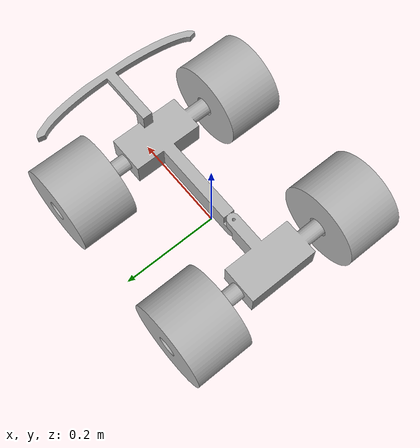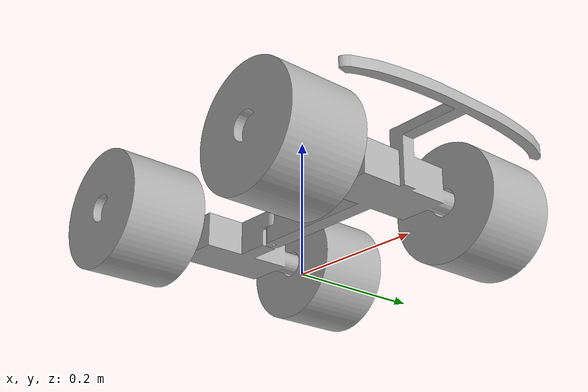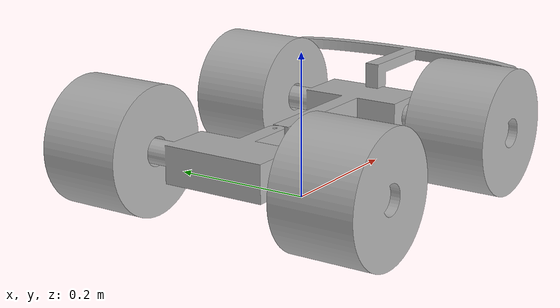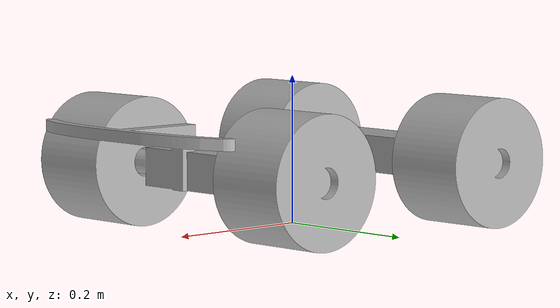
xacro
<?xml version="1.0" ?>
<robot name="farmbot" xmlns:xacro="http://www.ros.org/wiki/xacro">

<xacro:include filename="$(find farmbot_description)/urdf/materials.xacro" />
<xacro:include filename="$(find farmbot_description)/urdf/farmbot.gazebo" />
<link name="base_link">
  <inertial>
    <origin xyz="0.14705284891472079 0.005827858553437189 3.5052699745628e-07" rpy="0 0 0"/>
    <mass value="8.113454311504578"/>
    <inertia ixx="0.03198" iyy="0.07641" izz="0.051754" ixy="-0.006565" iyz="-0.0" ixz="-1e-06"/>
  </inertial>
  <visual>
    <origin xyz="0 0 0.087" rpy="${pi/2} 0 0"/>
    <geometry>
      <mesh filename="file://$(find farmbot_description)/meshes/base_link.stl" scale="0.001 0.001 0.001"/>
    </geometry>
    <material name="silver"/>
  </visual>
  <collision>
    <origin xyz="0 0 0.087" rpy="${pi/2} 0 0"/>
    <geometry>
      <mesh filename="file://$(find farmbot_description)/meshes/base_link.stl" scale="0.001 0.001 0.001"/>
    </geometry>
  </collision>
</link>

<link name="component__1__1">
  <inertial>
    <origin xyz="-0.09236420727033787 0.00021362177608096554 -4.877897432420397e-07" rpy="0 0 0"/>
    <mass value="5.8958658025807615"/>
    <inertia ixx="0.022471" iyy="0.026114" izz="0.005817" ixy="-0.000116" iyz="-0.0" ixz="-0.0"/>
  </inertial>
  <visual>
    <origin xyz="0.0625 0.0 0.0" rpy="${pi/2} 0 0"/>
    <geometry>
      <mesh filename="file://$(find farmbot_description)/meshes/component__1__1.stl" scale="0.001 0.001 0.001"/>
    </geometry>
    <material name="silver"/>
  </visual>
  <collision>
    <origin xyz="0.0625 0.0 0.087" rpy="${pi/2} 0 0"/>
    <geometry>
      <mesh filename="file://$(find farmbot_description)/meshes/component__1__1.stl" scale="0.001 0.001 0.001"/>
    </geometry>
  </collision>
</link>

<link name="component__2__1">
  <inertial>
    <origin xyz="-3.7769361846407e-07 -3.5857001496231076e-07 -0.0059616689033889225" rpy="0 0 0"/>
    <mass value="20.82503572060766"/>
    <inertia ixx="0.063249" iyy="0.063249" izz="0.081111" ixy="-0.0" iyz="0.0" ixz="0.0"/>
  </inertial>
  <visual>
    <origin xyz="-0.161565 -0.166785 0.0" rpy="${pi/2} 0 0"/>
    <geometry>
      <mesh filename="file://$(find farmbot_description)/meshes/component__2__1.stl" scale="0.001 0.001 0.001"/>
    </geometry>
    <material name="silver"/>
  </visual>
  <collision>
    <origin xyz="-0.161565 -0.166785 0.0" rpy="${pi/2} 0 0"/>
    <geometry>
      <mesh filename="file://$(find farmbot_description)/meshes/component__2__1.stl" scale="0.001 0.001 0.001"/>
    </geometry>
  </collision>
</link>

<link name="component__2__2">
  <inertial>
    <origin xyz="-3.7769361846407e-07 -3.5857001489125644e-07 0.005961691828770682" rpy="0 0 0"/>
    <mass value="20.82503572060766"/>
    <inertia ixx="0.063249" iyy="0.063249" izz="0.081111" ixy="0.0" iyz="0.0" ixz="-0.0"/>
  </inertial>
  <visual>
    <origin xyz="-0.161565 0.166784 0.0" rpy="${pi/2} 0 0"/>
    <geometry>
      <mesh filename="file://$(find farmbot_description)/meshes/component__2__2.stl" scale="0.001 0.001 0.001"/>
    </geometry>
    <material name="silver"/>
  </visual>
  <collision>
    <origin xyz="-0.161565 0.166784 0.0" rpy="${pi/2} 0 0"/>
    <geometry>
      <mesh filename="file://$(find farmbot_description)/meshes/component__2__2.stl" scale="0.001 0.001 0.001"/>
    </geometry>
  </collision>
</link>

<link name="component__2__3">
  <inertial>
    <origin xyz="3.7769361843631444e-07 -3.5857001496231076e-07 -0.005961668903388867" rpy="0 0 0"/>
    <mass value="20.82503572060766"/>
    <inertia ixx="0.063249" iyy="0.063249" izz="0.081111" ixy="-0.0" iyz="0.0" ixz="-0.0"/>
  </inertial>
  <visual>
    <origin xyz="0.161565 -0.166785 0.0" rpy="${pi/2} 0 0"/>
    <geometry>
      <mesh filename="file://$(find farmbot_description)/meshes/component__2__3.stl" scale="0.001 0.001 0.001"/>
    </geometry>
    <material name="silver"/>
  </visual>
  <collision>
    <origin xyz="0.161565 -0.166785 0.0" rpy="${pi/2} 0 0"/>
    <geometry>
      <mesh filename="file://$(find farmbot_description)/meshes/component__2__3.stl" scale="0.001 0.001 0.001"/>
    </geometry>
  </collision>
</link>

<link name="component__2__4">
  <inertial>
    <origin xyz="3.7769361843631444e-07 -3.5857001489125644e-07 0.005961691828770765" rpy="0 0 0"/>
    <mass value="20.82503572060766"/>
    <inertia ixx="0.063249" iyy="0.063249" izz="0.081111" ixy="0.0" iyz="0.0" ixz="0.0"/>
  </inertial>
  <visual>
    <origin xyz="0.161565 0.166784 0.0" rpy="${pi/2} 0 0"/>
    <geometry>
      <mesh filename="file://$(find farmbot_description)/meshes/component__2__4.stl" scale="0.001 0.001 0.001"/>
    </geometry>
    <material name="silver"/>
  </visual>
  <collision>
    <origin xyz="0.161565 0.166784 0.0" rpy="${pi/2} 0 0"/>
    <geometry>
      <mesh filename="file://$(find farmbot_description)/meshes/component__2__4.stl" scale="0.001 0.001 0.001"/>
    </geometry>
  </collision>
</link>

<joint name="Revolute 1" type="fixed">
  <origin xyz="-0.0625 0.0 0.087" rpy="0 0 0"/>
  <parent link="base_link"/>
  <child link="component__1__1"/>
  <axis xyz="0.0 0.0 -0.5"/>
</joint>

<joint name="Revolute 2" type="continuous">
  <origin xyz="0.161565 0.166785 0.087" rpy="0 0 0"/>
  <parent link="base_link"/>
  <child link="component__2__1"/>
  <axis xyz="-0.0 1.0 0.0"/>
</joint>

<joint name="Revolute 3" type="continuous">
  <origin xyz="0.161565 -0.166784 0.087" rpy="0 0 0"/>
  <parent link="base_link"/>
  <child link="component__2__2"/>
  <axis xyz="-0.0 1.0 -0.0"/>
</joint>

<joint name="Revolute 4" type="continuous">
  <origin xyz="-0.099065 0.166785 0.0" rpy="0 0 0"/>
  <parent link="component__1__1"/>
  <child link="component__2__3"/>
  <axis xyz="0.0 1.0 -0.0"/>
</joint>

<joint name="Revolute 5" type="continuous">
  <origin xyz="-0.099065 -0.166784 0.0" rpy="0 0 0"/>
  <parent link="component__1__1"/>
  <child link="component__2__4"/>
  <axis xyz="0.0 1.0 0.0"/>
</joint>

</robot>

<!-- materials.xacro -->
<robot name="farmbot" xmlns:xacro="http://www.ros.org/wiki/xacro" >

<material name="silver">
  <color rgba="0.700 0.700 0.700 1.000"/>
</material>
<material name="red">
  <color rgba="1 0 0 1"/>
</material>

</robot>

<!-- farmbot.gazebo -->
<robot name="farmbot" xmlns:xacro="http://www.ros.org/wiki/xacro" >

<xacro:property name="body_color" value="Gazebo/Silver" />

 <gazebo>

    <!-- Wheel info -->

    <!-- limits -->

    <!-- Output -->

</gazebo>
<gazebo reference="base_link"> <!-- Rear Chassis -->
  <material>${body_color}</material>
  <mu1>0.2</mu1>
  <mu2>0.2</mu2>
  <self_collide>true</self_collide>
  <gravity>true</gravity>
</gazebo>

<gazebo reference="component__1__1"> <!-- Steering chassis -->
  <material>${body_color}</material>
  <mu1>0.2</mu1>
  <mu2>0.2</mu2>
  <self_collide>true</self_collide>
</gazebo>

<gazebo reference="component__2__1"> <!-- front right wheel -->
  <material>${body_color}</material>
  <mu1>0.2</mu1>
  <mu2>0.2</mu2>
  <self_collide>true</self_collide>
</gazebo>

<gazebo reference="component__2__2"> <!-- front left wheel -->
  <material>${body_color}</material>
  <mu1>0.2</mu1>
  <mu2>0.2</mu2>
  <self_collide>true</self_collide>
</gazebo>

<gazebo reference="component__2__3"> <!-- rear right wheel -->
  <material>${body_color}</material>
  <mu1>0.2</mu1>
  <mu2>0.2</mu2>
  <self_collide>true</self_collide>
</gazebo>

<gazebo reference="component__2__4"> <!-- rear left wheel -->
  <material>${body_color}</material>
  <mu1>0.2</mu1>
  <mu2>0.2</mu2>
  <self_collide>true</self_collide>
</gazebo>

</robot>
